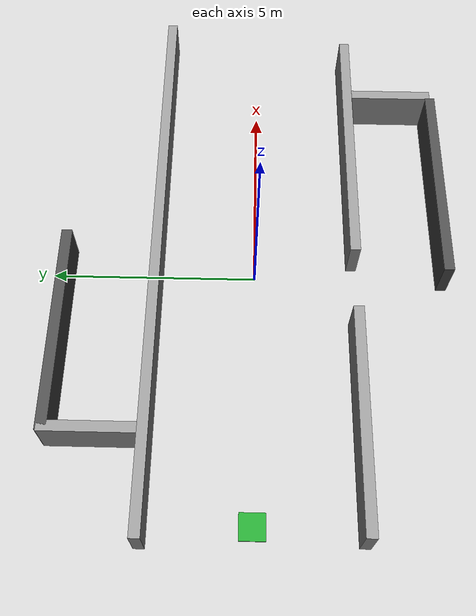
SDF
<?xml version="1.0"?>
<sdf version="1.6">
  <world name="thermal_nav_corridor_rooms">
    <physics type="ode">
      <real_time_update_rate>1000</real_time_update_rate>
      <max_step_size>0.001</max_step_size>
      <real_time_factor>1</real_time_factor>
      <ode>
        <solver>
          <type>quick</type>
          <iters>50</iters>
          <sor>1.0</sor>
          <use_dynamic_moi_rescaling>0</use_dynamic_moi_rescaling>
        </solver>
        <constraints>
          <cfm>0.0001</cfm>
          <erp>0.1</erp>
          <contact_max_correcting_vel>2.0</contact_max_correcting_vel>
          <contact_surface_layer>0.005</contact_surface_layer>
        </constraints>
      </ode>
    </physics>

    <include><uri>model://sun</uri></include>
    <include><uri>model://ground_plane</uri></include>

    <scene>
      <ambient>0.43 0.43 0.43 1</ambient>
      <background>0.16 0.18 0.22 1</background>
      <shadows>false</shadows>
    </scene>

    <gui fullscreen="0">
      <camera name="user_camera">
        <pose>0 0 22 0 1.5707 0</pose>
        <view_controller>orbit</view_controller>
      </camera>
    </gui>

    <model name="robot_start_marker">
      <static>true</static>
      <pose>-6.0 0 0 0 0 0</pose>
      <link name="link">
        <visual name="pad">
          <pose>0 0 0.02 0 0 0</pose>
          <geometry><box><size>0.6 0.6 0.04</size></box></geometry>
          <material><script>
            <uri>file://media/materials/scripts/gazebo.material</uri>
            <name>Gazebo/Green</name>
          </script></material>
        </visual>
      </link>
    </model>

    <model name="wall_main_north">
      <static>true</static>
      <pose>0.5 2.4 0.55 0 0 0</pose>
      <link name="link">
        <collision name="collision"><geometry><box><size>14.0 0.25 1.1</size></box></geometry></collision>
        <visual name="visual"><geometry><box><size>14.0 0.25 1.1</size></box></geometry>
          <material><script><uri>file://media/materials/scripts/gazebo.material</uri><name>Gazebo/Grey</name></script></material>
        </visual>
      </link>
    </model>

    <model name="wall_main_south_left">
      <static>true</static>
      <pose>-3.8 -2.4 0.55 0 0 0</pose>
      <link name="link">
        <collision name="collision"><geometry><box><size>5.2 0.25 1.1</size></box></geometry></collision>
        <visual name="visual"><geometry><box><size>5.2 0.25 1.1</size></box></geometry>
          <material><script><uri>file://media/materials/scripts/gazebo.material</uri><name>Gazebo/Grey</name></script></material>
        </visual>
      </link>
    </model>

    <model name="wall_main_south_right">
      <static>true</static>
      <pose>3.6 -2.4 0.55 0 0 0</pose>
      <link name="link">
        <collision name="collision"><geometry><box><size>6.6 0.25 1.1</size></box></geometry></collision>
        <visual name="visual"><geometry><box><size>6.6 0.25 1.1</size></box></geometry>
          <material><script><uri>file://media/materials/scripts/gazebo.material</uri><name>Gazebo/Grey</name></script></material>
        </visual>
      </link>
    </model>

    <model name="wall_room_north_inner">
      <static>true</static>
      <pose>-1.8 4.6 0.55 0 0 0</pose>
      <link name="link">
        <collision name="collision"><geometry><box><size>5.0 0.25 1.1</size></box></geometry></collision>
        <visual name="visual"><geometry><box><size>5.0 0.25 1.1</size></box></geometry>
          <material><script><uri>file://media/materials/scripts/gazebo.material</uri><name>Gazebo/DarkGrey</name></script></material>
        </visual>
      </link>
    </model>

    <model name="wall_room_south_inner">
      <static>true</static>
      <pose>2.4 -4.6 0.55 0 0 0</pose>
      <link name="link">
        <collision name="collision"><geometry><box><size>5.2 0.25 1.1</size></box></geometry></collision>
        <visual name="visual"><geometry><box><size>5.2 0.25 1.1</size></box></geometry>
          <material><script><uri>file://media/materials/scripts/gazebo.material</uri><name>Gazebo/DarkGrey</name></script></material>
        </visual>
      </link>
    </model>

    <model name="wall_room_left_divider">
      <static>true</static>
      <pose>-4.2 3.55 0.55 0 0 1.5708</pose>
      <link name="link">
        <collision name="collision"><geometry><box><size>2.3 0.25 1.1</size></box></geometry></collision>
        <visual name="visual"><geometry><box><size>2.3 0.25 1.1</size></box></geometry>
          <material><script><uri>file://media/materials/scripts/gazebo.material</uri><name>Gazebo/Grey</name></script></material>
        </visual>
      </link>
    </model>

    <model name="wall_room_right_divider">
      <static>true</static>
      <pose>5.1 -3.5 0.55 0 0 1.5708</pose>
      <link name="link">
        <collision name="collision"><geometry><box><size>2.2 0.25 1.1</size></box></geometry></collision>
        <visual name="visual"><geometry><box><size>2.2 0.25 1.1</size></box></geometry>
          <material><script><uri>file://media/materials/scripts/gazebo.material</uri><name>Gazebo/Grey</name></script></material>
        </visual>
      </link>
    </model>
  </world>
</sdf>
